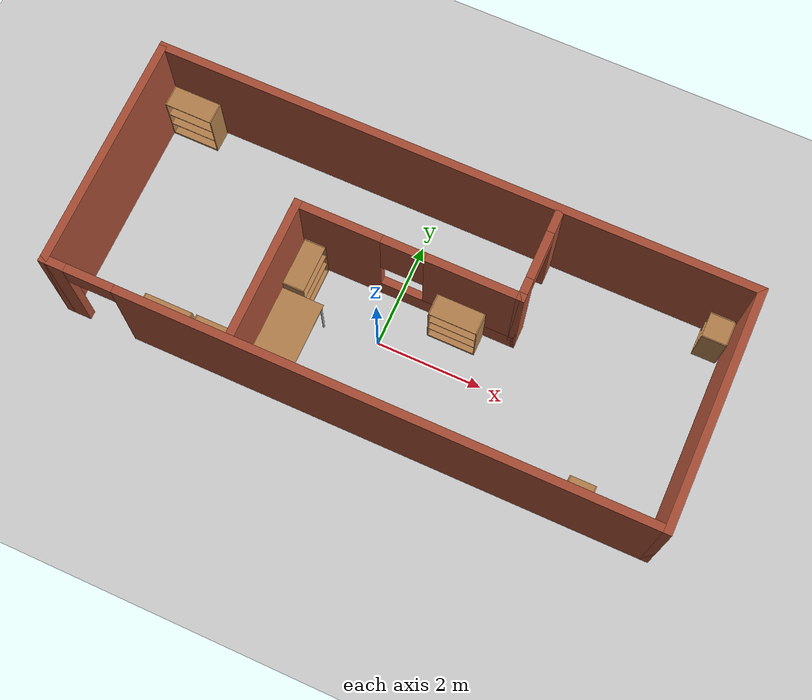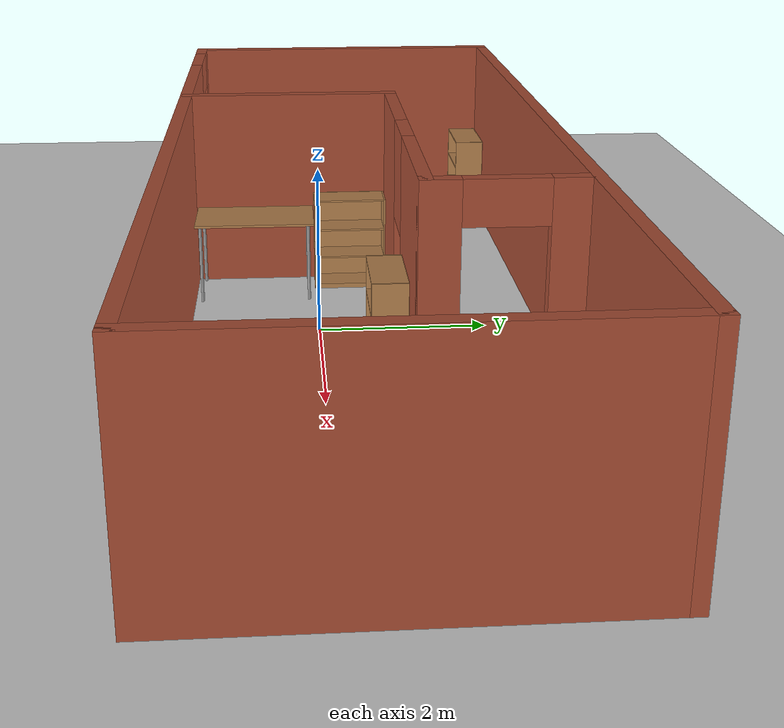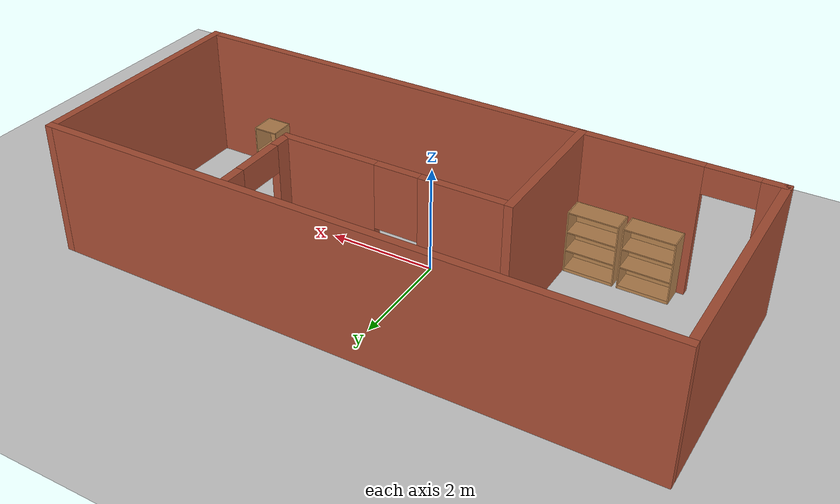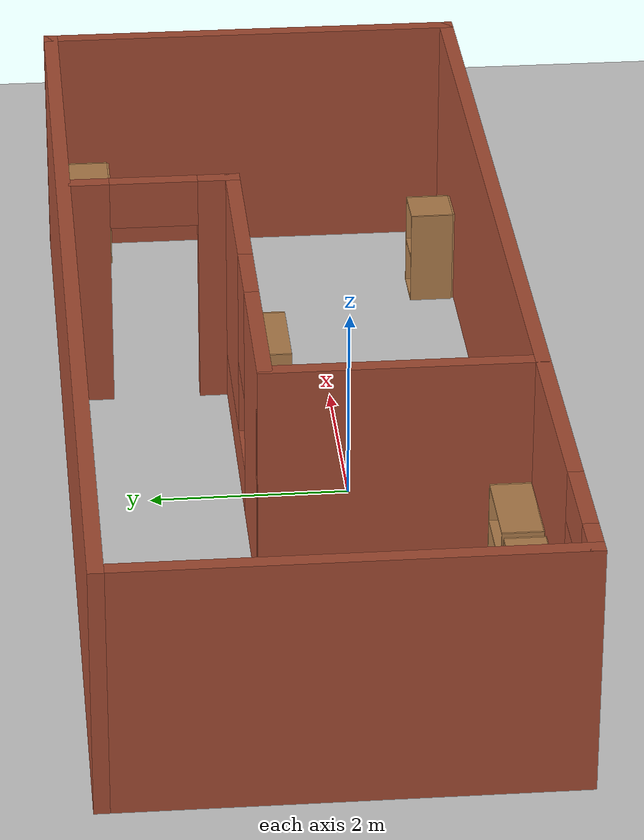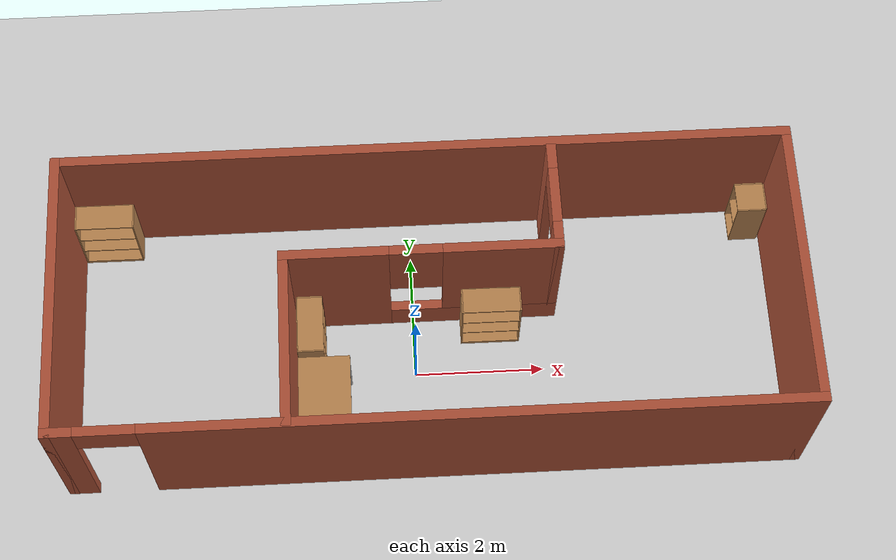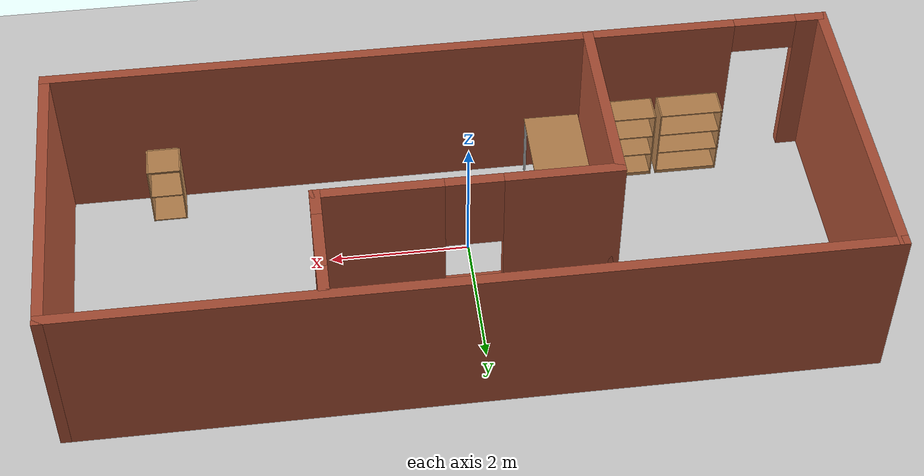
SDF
<sdf version="1.7">
 <world name="default">
  <light name="sun" type="directional">
   <pose>0 0 10 0 -0 0</pose>
   <diffuse>0.8 0.8 0.8 1</diffuse>
   <specular>0.2 0.2 0.2 1</specular>
   <attenuation>
    <range>1000</range>
    <constant>0.9</constant>
    <linear>0.01</linear>
    <quadratic>0.001</quadratic>
   </attenuation>
   <direction>-0.5 0.1 -0.9</direction>
   <spot><inner_angle>0</inner_angle><outer_angle>0</outer_angle><falloff>0</falloff></spot>
  </light>
  <model name="ground_plane">
   <static>1</static>
   <link name="link">
    <collision name="collision">
     <geometry><plane><normal>0 0 1</normal><size>100 100</size></plane></geometry>
     <surface><friction><ode><mu>100</mu><mu2>50</mu2></ode></friction></surface>
    </collision>
    <visual name="visual">
     <cast_shadows>0</cast_shadows>
     <geometry><plane><normal>0 0 1</normal><size>100 100</size></plane></geometry>
     <material>
      <script><uri>file://media/materials/scripts/gazebo.material</uri><name>Gazebo/Grey</name></script>
     </material>
    </visual>
   </link>
  </model>
  <gravity>0 0 -9.8</gravity>
  <magnetic_field>6e-06 2.3e-05 -4.2e-05</magnetic_field>
  <atmosphere type="adiabatic"/>
  <physics type="ode">
   <max_step_size>0.001</max_step_size>
   <real_time_factor>1</real_time_factor>
   <real_time_update_rate>1000</real_time_update_rate>
  </physics>
  <scene><ambient>0.4 0.4 0.4 1</ambient><background>0.7 0.7 0.7 1</background><shadows>1</shadows></scene>
  <audio><device>default</device></audio>
  <spherical_coordinates>
   <surface_model>EARTH_WGS84</surface_model>
   <latitude_deg>0</latitude_deg>
   <longitude_deg>0</longitude_deg>
   <elevation>0</elevation>
   <heading_deg>0</heading_deg>
  </spherical_coordinates>
  <model name="libraryV2">
   <pose>0.22377 0.78673 0 0 -0 0</pose>
   <link name="Wall_11">
    <collision name="Wall_11_Collision">
     <geometry><box><size>4.5 0.15 2.5</size></box></geometry>
     <pose>0 0 1.25 0 -0 0</pose>
    </collision>
    <visual name="Wall_11_Visual">
     <pose>0 0 1.25 0 -0 0</pose>
     <geometry><box><size>4.5 0.15 2.5</size></box></geometry>
     <material>
      <script><uri>file://media/materials/scripts/gazebo.material</uri><name>Gazebo/Bricks</name></script>
      <ambient>1 1 1 1</ambient>
     </material>
     <meta><layer>0</layer></meta>
    </visual>
    <pose>5.55 -0.2375 0 0 -0 1.5708</pose>
   </link>
   <link name="Wall_13">
    <collision name="Wall_13_Collision">
     <geometry><box><size>2.75 0.15 2.5</size></box></geometry>
     <pose>0 0 1.25 0 -0 0</pose>
    </collision>
    <visual name="Wall_13_Visual">
     <pose>0 0 1.25 0 -0 0</pose>
     <geometry><box><size>2.75 0.15 2.5</size></box></geometry>
     <material>
      <script><uri>file://media/materials/scripts/gazebo.material</uri><name>Gazebo/Bricks</name></script>
      <ambient>1 1 1 1</ambient>
     </material>
     <meta><layer>0</layer></meta>
    </visual>
    <pose>-2.14 -1.0925 0 0 -0 1.5708</pose>
   </link>
   <link name="Wall_14">
    <pose>-0.09 0.2075 0 0 -0 0</pose>
    <visual name="Wall_14_Visual_0">
     <pose>-1.3025 0 1.25 0 -0 0</pose>
     <geometry><box><size>1.645 0.15 2.5</size></box></geometry>
     <material>
      <script><uri>file://media/materials/scripts/gazebo.material</uri><name>Gazebo/Bricks</name></script>
      <ambient>1 1 1 1</ambient>
     </material>
     <meta><layer>0</layer></meta>
    </visual>
    <collision name="Wall_14_Collision_0">
     <geometry><box><size>1.645 0.15 2.5</size></box></geometry>
     <pose>-1.3025 0 1.25 0 -0 0</pose>
    </collision>
    <visual name="Wall_14_Visual_1">
     <pose>0.8225 0 0.25 0 -0 0</pose>
     <geometry><box><size>2.605 0.15 0.5</size></box></geometry>
     <material>
      <script><uri>file://media/materials/scripts/gazebo.material</uri><name>Gazebo/Bricks</name></script>
      <ambient>1 1 1 1</ambient>
     </material>
     <meta><layer>0</layer></meta>
    </visual>
    <collision name="Wall_14_Collision_1">
     <geometry><box><size>2.605 0.15 0.5</size></box></geometry>
     <pose>0.8225 0 0.25 0 -0 0</pose>
    </collision>
    <visual name="Wall_14_Visual_2">
     <pose>1.2225 0 1.5 0 -0 0</pose>
     <geometry><box><size>1.805 0.15 2</size></box></geometry>
     <material>
      <script><uri>file://media/materials/scripts/gazebo.material</uri><name>Gazebo/Bricks</name></script>
      <ambient>1 1 1 1</ambient>
     </material>
     <meta><layer>0</layer></meta>
    </visual>
    <collision name="Wall_14_Collision_2">
     <geometry><box><size>1.805 0.15 2</size></box></geometry>
     <pose>1.2225 0 1.5 0 -0 0</pose>
    </collision>
    <visual name="Wall_14_Visual_3">
     <pose>-0.08 0 1.9 0 -0 0</pose>
     <geometry><box><size>0.8 0.15 1.2</size></box></geometry>
     <material>
      <script><uri>file://media/materials/scripts/gazebo.material</uri><name>Gazebo/Bricks</name></script>
      <ambient>1 1 1 1</ambient>
     </material>
     <meta><layer>0</layer></meta>
    </visual>
    <collision name="Wall_14_Collision_3">
     <geometry><box><size>0.8 0.15 1.2</size></box></geometry>
     <pose>-0.08 0 1.9 0 -0 0</pose>
    </collision>
   </link>
   <link name="Wall_15">
    <pose>1.96 1.0075 0 0 -0 1.5708</pose>
    <visual name="Wall_15_Visual_0">
     <pose>-0.6575 0 1.25 0 -0 0</pose>
     <geometry><box><size>0.435 0.15 2.5</size></box></geometry>
     <material>
      <script><uri>file://media/materials/scripts/gazebo.material</uri><name>Gazebo/Bricks</name></script>
      <ambient>1 1 1 1</ambient>
     </material>
     <meta><layer>0</layer></meta>
    </visual>
    <collision name="Wall_15_Collision_0">
     <geometry><box><size>0.435 0.15 2.5</size></box></geometry>
     <pose>-0.6575 0 1.25 0 -0 0</pose>
    </collision>
    <visual name="Wall_15_Visual_1">
     <pose>0.6675 0 1.25 0 -0 0</pose>
     <geometry><box><size>0.415 0.15 2.5</size></box></geometry>
     <material>
      <script><uri>file://media/materials/scripts/gazebo.material</uri><name>Gazebo/Bricks</name></script>
      <ambient>1 1 1 1</ambient>
     </material>
     <meta><layer>0</layer></meta>
    </visual>
    <collision name="Wall_15_Collision_1">
     <geometry><box><size>0.415 0.15 2.5</size></box></geometry>
     <pose>0.6675 0 1.25 0 -0 0</pose>
    </collision>
    <visual name="Wall_15_Visual_2">
     <pose>0.01 0 2.25 0 -0 0</pose>
     <geometry><box><size>0.9 0.15 0.5</size></box></geometry>
     <material>
      <script><uri>file://media/materials/scripts/gazebo.material</uri><name>Gazebo/Bricks</name></script>
      <ambient>1 1 1 1</ambient>
     </material>
     <meta><layer>0</layer></meta>
    </visual>
    <collision name="Wall_15_Collision_2">
     <geometry><box><size>0.9 0.15 0.5</size></box></geometry>
     <pose>0.01 0 2.25 0 -0 0</pose>
    </collision>
   </link>
   <link name="Wall_7">
    <collision name="Wall_7_Collision">
     <geometry><box><size>11.25 0.15 2.5</size></box></geometry>
     <pose>0 0 1.25 0 -0 0</pose>
    </collision>
    <visual name="Wall_7_Visual">
     <pose>0 0 1.25 0 -0 0</pose>
     <geometry><box><size>11.25 0.15 2.5</size></box></geometry>
     <material>
      <script><uri>file://media/materials/scripts/gazebo.material</uri><name>Gazebo/Bricks</name></script>
      <ambient>1 1 1 1</ambient>
     </material>
     <meta><layer>0</layer></meta>
    </visual>
    <pose>-0 1.9375 0 0 -0 3.14159</pose>
   </link>
   <link name="Wall_8">
    <collision name="Wall_8_Collision">
     <geometry><box><size>4.5 0.15 2.5</size></box></geometry>
     <pose>0 0 1.25 0 -0 0</pose>
    </collision>
    <visual name="Wall_8_Visual">
     <pose>0 0 1.25 0 -0 0</pose>
     <geometry><box><size>4.5 0.15 2.5</size></box></geometry>
     <material>
      <script><uri>file://media/materials/scripts/gazebo.material</uri><name>Gazebo/Bricks</name></script>
      <ambient>1 1 1 1</ambient>
     </material>
     <meta><layer>0</layer></meta>
    </visual>
    <pose>-5.55 -0.2375 0 0 -0 -1.5708</pose>
   </link>
   <link name="Wall_9">
    <pose>-0 -2.4125 0 0 -0 0</pose>
    <visual name="Wall_9_Visual_0">
     <pose>-5.3925 0 1.25 0 -0 0</pose>
     <geometry><box><size>0.465 0.15 2.5</size></box></geometry>
     <material>
      <script><uri>file://media/materials/scripts/gazebo.material</uri><name>Gazebo/Bricks</name></script>
      <ambient>1 1 1 1</ambient>
     </material>
     <meta><layer>0</layer></meta>
    </visual>
    <collision name="Wall_9_Collision_0">
     <geometry><box><size>0.465 0.15 2.5</size></box></geometry>
     <pose>-5.3925 0 1.25 0 -0 0</pose>
    </collision>
    <visual name="Wall_9_Visual_1">
     <pose>0.6825 0 1.25 0 -0 0</pose>
     <geometry><box><size>9.885 0.15 2.5</size></box></geometry>
     <material>
      <script><uri>file://media/materials/scripts/gazebo.material</uri><name>Gazebo/Bricks</name></script>
      <ambient>1 1 1 1</ambient>
     </material>
     <meta><layer>0</layer></meta>
    </visual>
    <collision name="Wall_9_Collision_1">
     <geometry><box><size>9.885 0.15 2.5</size></box></geometry>
     <pose>0.6825 0 1.25 0 -0 0</pose>
    </collision>
    <visual name="Wall_9_Visual_2">
     <pose>-4.71 0 2.25 0 -0 0</pose>
     <geometry><box><size>0.9 0.15 0.5</size></box></geometry>
     <material>
      <script><uri>file://media/materials/scripts/gazebo.material</uri><name>Gazebo/Bricks</name></script>
      <ambient>1 1 1 1</ambient>
     </material>
     <meta><layer>0</layer></meta>
    </visual>
    <collision name="Wall_9_Collision_2">
     <geometry><box><size>0.9 0.15 0.5</size></box></geometry>
     <pose>-4.71 0 2.25 0 -0 0</pose>
    </collision>
   </link>
   <static>1</static>
  </model>
  <model name="bookshelf">
   <static>1</static>
   <link name="link">
    <inertial><mass>1</mass></inertial>
    <collision name="back">
     <pose>0 0.005 0.6 0 -0 0</pose>
     <geometry><box><size>0.9 0.01 1.2</size></box></geometry>
    </collision>
    <visual name="visual1">
     <pose>0 0.005 0.6 0 -0 0</pose>
     <geometry><box><size>0.9 0.01 1.2</size></box></geometry>
     <material>
      <script><uri>file://media/materials/scripts/gazebo.material</uri><name>Gazebo/Wood</name></script>
     </material>
    </visual>
    <collision name="left_side">
     <pose>0.45 -0.195 0.6 0 -0 0</pose>
     <geometry><box><size>0.02 0.4 1.2</size></box></geometry>
    </collision>
    <visual name="visual2">
     <pose>0.45 -0.195 0.6 0 -0 0</pose>
     <geometry><box><size>0.02 0.4 1.2</size></box></geometry>
     <material>
      <script><uri>file://media/materials/scripts/gazebo.material</uri><name>Gazebo/Wood</name></script>
     </material>
    </visual>
    <collision name="right_side">
     <pose>-0.45 -0.195 0.6 0 -0 0</pose>
     <geometry><box><size>0.02 0.4 1.2</size></box></geometry>
    </collision>
    <visual name="visual3">
     <pose>-0.45 -0.195 0.6 0 -0 0</pose>
     <geometry><box><size>0.02 0.4 1.2</size></box></geometry>
     <material>
      <script><uri>file://media/materials/scripts/gazebo.material</uri><name>Gazebo/Wood</name></script>
     </material>
    </visual>
    <collision name="bottom">
     <pose>0 -0.195 0.03 0 -0 0</pose>
     <geometry><box><size>0.88 0.4 0.06</size></box></geometry>
    </collision>
    <visual name="visual4">
     <pose>0 -0.195 0.03 0 -0 0</pose>
     <geometry><box><size>0.88 0.4 0.06</size></box></geometry>
     <material>
      <script><uri>file://media/materials/scripts/gazebo.material</uri><name>Gazebo/Wood</name></script>
     </material>
    </visual>
    <collision name="top">
     <pose>0 -0.195 1.19 0 -0 0</pose>
     <geometry><box><size>0.88 0.4 0.02</size></box></geometry>
    </collision>
    <visual name="visual5">
     <pose>0 -0.195 1.19 0 -0 0</pose>
     <geometry><box><size>0.88 0.4 0.02</size></box></geometry>
     <material>
      <script><uri>file://media/materials/scripts/gazebo.material</uri><name>Gazebo/Wood</name></script>
     </material>
    </visual>
    <collision name="low_shelf">
     <pose>0 -0.195 0.43 0 -0 0</pose>
     <geometry><box><size>0.88 0.4 0.02</size></box></geometry>
    </collision>
    <visual name="visual6">
     <pose>0 -0.195 0.43 0 -0 0</pose>
     <geometry><box><size>0.88 0.4 0.02</size></box></geometry>
     <material>
      <script><uri>file://media/materials/scripts/gazebo.material</uri><name>Gazebo/Wood</name></script>
     </material>
    </visual>
    <collision name="high_shelf">
     <pose>0 -0.195 0.8 0 -0 0</pose>
     <geometry><box><size>0.88 0.4 0.02</size></box></geometry>
    </collision>
    <visual name="visual7">
     <pose>0 -0.195 0.8 0 -0 0</pose>
     <geometry><box><size>0.88 0.4 0.02</size></box></geometry>
     <material>
      <script><uri>file://media/materials/scripts/gazebo.material</uri><name>Gazebo/Wood</name></script>
     </material>
    </visual>
   </link>
   <pose>-2.45333 -1.538 0 0 -0 3.14098</pose>
  </model>
  <model name="bookshelf_clone">
   <static>1</static>
   <link name="link">
    <inertial><mass>1</mass></inertial>
    <collision name="back">
     <pose>0 0.005 0.6 0 -0 0</pose>
     <geometry><box><size>0.9 0.01 1.2</size></box></geometry>
    </collision>
    <visual name="visual1">
     <pose>0 0.005 0.6 0 -0 0</pose>
     <geometry><box><size>0.9 0.01 1.2</size></box></geometry>
     <material>
      <script><uri>file://media/materials/scripts/gazebo.material</uri><name>Gazebo/Wood</name></script>
     </material>
    </visual>
    <collision name="left_side">
     <pose>0.45 -0.195 0.6 0 -0 0</pose>
     <geometry><box><size>0.02 0.4 1.2</size></box></geometry>
    </collision>
    <visual name="visual2">
     <pose>0.45 -0.195 0.6 0 -0 0</pose>
     <geometry><box><size>0.02 0.4 1.2</size></box></geometry>
     <material>
      <script><uri>file://media/materials/scripts/gazebo.material</uri><name>Gazebo/Wood</name></script>
     </material>
    </visual>
    <collision name="right_side">
     <pose>-0.45 -0.195 0.6 0 -0 0</pose>
     <geometry><box><size>0.02 0.4 1.2</size></box></geometry>
    </collision>
    <visual name="visual3">
     <pose>-0.45 -0.195 0.6 0 -0 0</pose>
     <geometry><box><size>0.02 0.4 1.2</size></box></geometry>
     <material>
      <script><uri>file://media/materials/scripts/gazebo.material</uri><name>Gazebo/Wood</name></script>
     </material>
    </visual>
    <collision name="bottom">
     <pose>0 -0.195 0.03 0 -0 0</pose>
     <geometry><box><size>0.88 0.4 0.06</size></box></geometry>
    </collision>
    <visual name="visual4">
     <pose>0 -0.195 0.03 0 -0 0</pose>
     <geometry><box><size>0.88 0.4 0.06</size></box></geometry>
     <material>
      <script><uri>file://media/materials/scripts/gazebo.material</uri><name>Gazebo/Wood</name></script>
     </material>
    </visual>
    <collision name="top">
     <pose>0 -0.195 1.19 0 -0 0</pose>
     <geometry><box><size>0.88 0.4 0.02</size></box></geometry>
    </collision>
    <visual name="visual5">
     <pose>0 -0.195 1.19 0 -0 0</pose>
     <geometry><box><size>0.88 0.4 0.02</size></box></geometry>
     <material>
      <script><uri>file://media/materials/scripts/gazebo.material</uri><name>Gazebo/Wood</name></script>
     </material>
    </visual>
    <collision name="low_shelf">
     <pose>0 -0.195 0.43 0 -0 0</pose>
     <geometry><box><size>0.88 0.4 0.02</size></box></geometry>
    </collision>
    <visual name="visual6">
     <pose>0 -0.195 0.43 0 -0 0</pose>
     <geometry><box><size>0.88 0.4 0.02</size></box></geometry>
     <material>
      <script><uri>file://media/materials/scripts/gazebo.material</uri><name>Gazebo/Wood</name></script>
     </material>
    </visual>
    <collision name="high_shelf">
     <pose>0 -0.195 0.8 0 -0 0</pose>
     <geometry><box><size>0.88 0.4 0.02</size></box></geometry>
    </collision>
    <visual name="visual7">
     <pose>0 -0.195 0.8 0 -0 0</pose>
     <geometry><box><size>0.88 0.4 0.02</size></box></geometry>
     <material>
      <script><uri>file://media/materials/scripts/gazebo.material</uri><name>Gazebo/Wood</name></script>
     </material>
    </visual>
   </link>
   <pose>-3.44298 -1.54255 0 0 -0 3.14098</pose>
  </model>
  <model name="bookshelf_clone_clone">
   <static>1</static>
   <link name="link">
    <inertial><mass>1</mass></inertial>
    <collision name="back">
     <pose>0 0.005 0.6 0 -0 0</pose>
     <geometry><box><size>0.9 0.01 1.2</size></box></geometry>
    </collision>
    <visual name="visual1">
     <pose>0 0.005 0.6 0 -0 0</pose>
     <geometry><box><size>0.9 0.01 1.2</size></box></geometry>
     <material>
      <script><uri>file://media/materials/scripts/gazebo.material</uri><name>Gazebo/Wood</name></script>
     </material>
    </visual>
    <collision name="left_side">
     <pose>0.45 -0.195 0.6 0 -0 0</pose>
     <geometry><box><size>0.02 0.4 1.2</size></box></geometry>
    </collision>
    <visual name="visual2">
     <pose>0.45 -0.195 0.6 0 -0 0</pose>
     <geometry><box><size>0.02 0.4 1.2</size></box></geometry>
     <material>
      <script><uri>file://media/materials/scripts/gazebo.material</uri><name>Gazebo/Wood</name></script>
     </material>
    </visual>
    <collision name="right_side">
     <pose>-0.45 -0.195 0.6 0 -0 0</pose>
     <geometry><box><size>0.02 0.4 1.2</size></box></geometry>
    </collision>
    <visual name="visual3">
     <pose>-0.45 -0.195 0.6 0 -0 0</pose>
     <geometry><box><size>0.02 0.4 1.2</size></box></geometry>
     <material>
      <script><uri>file://media/materials/scripts/gazebo.material</uri><name>Gazebo/Wood</name></script>
     </material>
    </visual>
    <collision name="bottom">
     <pose>0 -0.195 0.03 0 -0 0</pose>
     <geometry><box><size>0.88 0.4 0.06</size></box></geometry>
    </collision>
    <visual name="visual4">
     <pose>0 -0.195 0.03 0 -0 0</pose>
     <geometry><box><size>0.88 0.4 0.06</size></box></geometry>
     <material>
      <script><uri>file://media/materials/scripts/gazebo.material</uri><name>Gazebo/Wood</name></script>
     </material>
    </visual>
    <collision name="top">
     <pose>0 -0.195 1.19 0 -0 0</pose>
     <geometry><box><size>0.88 0.4 0.02</size></box></geometry>
    </collision>
    <visual name="visual5">
     <pose>0 -0.195 1.19 0 -0 0</pose>
     <geometry><box><size>0.88 0.4 0.02</size></box></geometry>
     <material>
      <script><uri>file://media/materials/scripts/gazebo.material</uri><name>Gazebo/Wood</name></script>
     </material>
    </visual>
    <collision name="low_shelf">
     <pose>0 -0.195 0.43 0 -0 0</pose>
     <geometry><box><size>0.88 0.4 0.02</size></box></geometry>
    </collision>
    <visual name="visual6">
     <pose>0 -0.195 0.43 0 -0 0</pose>
     <geometry><box><size>0.88 0.4 0.02</size></box></geometry>
     <material>
      <script><uri>file://media/materials/scripts/gazebo.material</uri><name>Gazebo/Wood</name></script>
     </material>
    </visual>
    <collision name="high_shelf">
     <pose>0 -0.195 0.8 0 -0 0</pose>
     <geometry><box><size>0.88 0.4 0.02</size></box></geometry>
    </collision>
    <visual name="visual7">
     <pose>0 -0.195 0.8 0 -0 0</pose>
     <geometry><box><size>0.88 0.4 0.02</size></box></geometry>
     <material>
      <script><uri>file://media/materials/scripts/gazebo.material</uri><name>Gazebo/Wood</name></script>
     </material>
    </visual>
   </link>
   <pose>-4.78564 2.62937 0 0 0 -0.003294</pose>
  </model>
  <model name="table">
   <static>1</static>
   <link name="link">
    <collision name="surface">
     <pose>0 0 1 0 -0 0</pose>
     <geometry><box><size>1.5 0.8 0.03</size></box></geometry>
     <surface><friction><ode><mu>0.6</mu><mu2>0.6</mu2></ode></friction></surface>
    </collision>
    <visual name="visual1">
     <pose>0 0 1 0 -0 0</pose>
     <geometry><box><size>1.5 0.8 0.03</size></box></geometry>
     <material>
      <script><uri>file://media/materials/scripts/gazebo.material</uri><name>Gazebo/Wood</name></script>
     </material>
    </visual>
    <collision name="front_left_leg">
     <pose>0.68 0.38 0.5 0 -0 0</pose>
     <geometry><cylinder><radius>0.02</radius><length>1</length></cylinder></geometry>
    </collision>
    <visual name="front_left_leg">
     <pose>0.68 0.38 0.5 0 -0 0</pose>
     <geometry><cylinder><radius>0.02</radius><length>1</length></cylinder></geometry>
     <material>
      <script><uri>file://media/materials/scripts/gazebo.material</uri><name>Gazebo/Grey</name></script>
     </material>
    </visual>
    <collision name="front_right_leg">
     <pose>0.68 -0.38 0.5 0 -0 0</pose>
     <geometry><cylinder><radius>0.02</radius><length>1</length></cylinder></geometry>
    </collision>
    <visual name="front_right_leg">
     <pose>0.68 -0.38 0.5 0 -0 0</pose>
     <geometry><cylinder><radius>0.02</radius><length>1</length></cylinder></geometry>
     <material>
      <script><uri>file://media/materials/scripts/gazebo.material</uri><name>Gazebo/Grey</name></script>
     </material>
    </visual>
    <collision name="back_right_leg">
     <pose>-0.68 -0.38 0.5 0 -0 0</pose>
     <geometry><cylinder><radius>0.02</radius><length>1</length></cylinder></geometry>
    </collision>
    <visual name="back_right_leg">
     <pose>-0.68 -0.38 0.5 0 -0 0</pose>
     <geometry><cylinder><radius>0.02</radius><length>1</length></cylinder></geometry>
     <material>
      <script><uri>file://media/materials/scripts/gazebo.material</uri><name>Gazebo/Grey</name></script>
     </material>
    </visual>
    <collision name="back_left_leg">
     <pose>-0.68 0.38 0.5 0 -0 0</pose>
     <geometry><cylinder><radius>0.02</radius><length>1</length></cylinder></geometry>
    </collision>
    <visual name="back_left_leg">
     <pose>-0.68 0.38 0.5 0 -0 0</pose>
     <geometry><cylinder><radius>0.02</radius><length>1</length></cylinder></geometry>
     <material>
      <script><uri>file://media/materials/scripts/gazebo.material</uri><name>Gazebo/Grey</name></script>
     </material>
    </visual>
   </link>
   <pose>-1.41367 -0.781275 0 0 0 -1.57486</pose>
  </model>
  <model name="cabinet">
   <static>1</static>
   <link name="cabinet_bottom_plate">
    <inertial>
     <pose>0 0 -1 0 -0 0</pose>
     <inertia><ixx>2.05</ixx><ixy>0</ixy><ixz>0</ixz><iyy>2.05</iyy><iyz>0</iyz><izz>2.05</izz></inertia>
     <mass>25</mass>
    </inertial>
    <collision name="cabinet_bottom_plate_geom">
     <pose>0 0 0.01 0 -0 0</pose>
     <geometry><box><size>0.45 0.45 0.02</size></box></geometry>
    </collision>
    <visual name="cabinet_bottom_plate_geom_visual">
     <pose>0 0 0.01 0 -0 0</pose>
     <geometry><box><size>0.45 0.45 0.02</size></box></geometry>
     <material>
      <script><uri>file://media/materials/scripts/gazebo.material</uri><name>Gazebo/Wood</name></script>
     </material>
    </visual>
    <collision name="cabinet_bottom_plate_geom_cabinet_back_plate">
     <pose>0.235 0 0.51 0 -0 0</pose>
     <geometry><box><size>0.02 0.45 1.02</size></box></geometry>
    </collision>
    <visual name="cabinet_bottom_plate_geom_cabinet_back_plate_visual">
     <pose>0.235 0 0.51 0 -0 0</pose>
     <geometry><box><size>0.02 0.45 1.02</size></box></geometry>
     <material>
      <script><uri>file://media/materials/scripts/gazebo.material</uri><name>Gazebo/Wood</name></script>
     </material>
    </visual>
    <collision name="cabinet_bottom_plate_geom_cabinet_left_plate">
     <pose>0 0.235 0.51 0 -0 0</pose>
     <geometry><box><size>0.45 0.02 1.02</size></box></geometry>
    </collision>
    <visual name="cabinet_bottom_plate_geom_cabinet_left_plate_visual">
     <pose>0 0.235 0.51 0 -0 0</pose>
     <geometry><box><size>0.45 0.02 1.02</size></box></geometry>
     <material>
      <script><uri>file://media/materials/scripts/gazebo.material</uri><name>Gazebo/Wood</name></script>
     </material>
    </visual>
    <collision name="cabinet_bottom_plate_geom_cabinet_middle_plate">
     <pose>0 0 0.51 0 -0 0</pose>
     <geometry><box><size>0.45 0.45 0.02</size></box></geometry>
    </collision>
    <visual name="cabinet_bottom_plate_geom_cabinet_middle_plate_visual">
     <pose>0 0 0.51 0 -0 0</pose>
     <geometry><box><size>0.45 0.45 0.02</size></box></geometry>
     <material>
      <script><uri>file://media/materials/scripts/gazebo.material</uri><name>Gazebo/Wood</name></script>
     </material>
    </visual>
    <collision name="cabinet_bottom_plate_geom_cabinet_right_plate">
     <pose>0 -0.235 0.51 0 -0 0</pose>
     <geometry><box><size>0.45 0.02 1.02</size></box></geometry>
    </collision>
    <visual name="cabinet_bottom_plate_geom_cabinet_right_plate_visual">
     <pose>0 -0.235 0.51 0 -0 0</pose>
     <geometry><box><size>0.45 0.02 1.02</size></box></geometry>
     <material>
      <script><uri>file://media/materials/scripts/gazebo.material</uri><name>Gazebo/Wood</name></script>
     </material>
    </visual>
    <collision name="cabinet_bottom_plate_geom_cabinet_top_plate">
     <pose>0 0 1.01 0 -0 0</pose>
     <geometry><box><size>0.45 0.45 0.02</size></box></geometry>
    </collision>
    <visual name="cabinet_bottom_plate_geom_cabinet_top_plate_visual">
     <pose>0 0 1.01 0 -0 0</pose>
     <geometry><box><size>0.45 0.45 0.02</size></box></geometry>
     <material>
      <script><uri>file://media/materials/scripts/gazebo.material</uri><name>Gazebo/Wood</name></script>
     </material>
    </visual>
   </link>
   <pose>5.43291 2.37446 0 0 -0 0</pose>
  </model>
  <model name="cabinet_clone">
   <static>1</static>
   <link name="cabinet_bottom_plate">
    <inertial>
     <pose>0 0 -1 0 -0 0</pose>
     <inertia><ixx>2.05</ixx><ixy>0</ixy><ixz>0</ixz><iyy>2.05</iyy><iyz>0</iyz><izz>2.05</izz></inertia>
     <mass>25</mass>
    </inertial>
    <collision name="cabinet_bottom_plate_geom">
     <pose>0 0 0.01 0 -0 0</pose>
     <geometry><box><size>0.45 0.45 0.02</size></box></geometry>
    </collision>
    <visual name="cabinet_bottom_plate_geom_visual">
     <pose>0 0 0.01 0 -0 0</pose>
     <geometry><box><size>0.45 0.45 0.02</size></box></geometry>
     <material>
      <script><uri>file://media/materials/scripts/gazebo.material</uri><name>Gazebo/Wood</name></script>
     </material>
    </visual>
    <collision name="cabinet_bottom_plate_geom_cabinet_back_plate">
     <pose>0.235 0 0.51 0 -0 0</pose>
     <geometry><box><size>0.02 0.45 1.02</size></box></geometry>
    </collision>
    <visual name="cabinet_bottom_plate_geom_cabinet_back_plate_visual">
     <pose>0.235 0 0.51 0 -0 0</pose>
     <geometry><box><size>0.02 0.45 1.02</size></box></geometry>
     <material>
      <script><uri>file://media/materials/scripts/gazebo.material</uri><name>Gazebo/Wood</name></script>
     </material>
    </visual>
    <collision name="cabinet_bottom_plate_geom_cabinet_left_plate">
     <pose>0 0.235 0.51 0 -0 0</pose>
     <geometry><box><size>0.45 0.02 1.02</size></box></geometry>
    </collision>
    <visual name="cabinet_bottom_plate_geom_cabinet_left_plate_visual">
     <pose>0 0.235 0.51 0 -0 0</pose>
     <geometry><box><size>0.45 0.02 1.02</size></box></geometry>
     <material>
      <script><uri>file://media/materials/scripts/gazebo.material</uri><name>Gazebo/Wood</name></script>
     </material>
    </visual>
    <collision name="cabinet_bottom_plate_geom_cabinet_middle_plate">
     <pose>0 0 0.51 0 -0 0</pose>
     <geometry><box><size>0.45 0.45 0.02</size></box></geometry>
    </collision>
    <visual name="cabinet_bottom_plate_geom_cabinet_middle_plate_visual">
     <pose>0 0 0.51 0 -0 0</pose>
     <geometry><box><size>0.45 0.45 0.02</size></box></geometry>
     <material>
      <script><uri>file://media/materials/scripts/gazebo.material</uri><name>Gazebo/Wood</name></script>
     </material>
    </visual>
    <collision name="cabinet_bottom_plate_geom_cabinet_right_plate">
     <pose>0 -0.235 0.51 0 -0 0</pose>
     <geometry><box><size>0.45 0.02 1.02</size></box></geometry>
    </collision>
    <visual name="cabinet_bottom_plate_geom_cabinet_right_plate_visual">
     <pose>0 -0.235 0.51 0 -0 0</pose>
     <geometry><box><size>0.45 0.02 1.02</size></box></geometry>
     <material>
      <script><uri>file://media/materials/scripts/gazebo.material</uri><name>Gazebo/Wood</name></script>
     </material>
    </visual>
    <collision name="cabinet_bottom_plate_geom_cabinet_top_plate">
     <pose>0 0 1.01 0 -0 0</pose>
     <geometry><box><size>0.45 0.45 0.02</size></box></geometry>
    </collision>
    <visual name="cabinet_bottom_plate_geom_cabinet_top_plate_visual">
     <pose>0 0 1.01 0 -0 0</pose>
     <geometry><box><size>0.45 0.45 0.02</size></box></geometry>
     <material>
      <script><uri>file://media/materials/scripts/gazebo.material</uri><name>Gazebo/Wood</name></script>
     </material>
    </visual>
   </link>
   <pose>4.2934 -1.29983 0 0 0 -1.56604</pose>
  </model>
  <model name="bookshelf_clone_clone_clone">
   <static>1</static>
   <link name="link">
    <inertial><mass>1</mass></inertial>
    <collision name="back">
     <pose>0 0.005 0.6 0 -0 0</pose>
     <geometry><box><size>0.9 0.01 1.2</size></box></geometry>
    </collision>
    <visual name="visual1">
     <pose>0 0.005 0.6 0 -0 0</pose>
     <geometry><box><size>0.9 0.01 1.2</size></box></geometry>
     <material>
      <script><uri>file://media/materials/scripts/gazebo.material</uri><name>Gazebo/Wood</name></script>
     </material>
    </visual>
    <collision name="left_side">
     <pose>0.45 -0.195 0.6 0 -0 0</pose>
     <geometry><box><size>0.02 0.4 1.2</size></box></geometry>
    </collision>
    <visual name="visual2">
     <pose>0.45 -0.195 0.6 0 -0 0</pose>
     <geometry><box><size>0.02 0.4 1.2</size></box></geometry>
     <material>
      <script><uri>file://media/materials/scripts/gazebo.material</uri><name>Gazebo/Wood</name></script>
     </material>
    </visual>
    <collision name="right_side">
     <pose>-0.45 -0.195 0.6 0 -0 0</pose>
     <geometry><box><size>0.02 0.4 1.2</size></box></geometry>
    </collision>
    <visual name="visual3">
     <pose>-0.45 -0.195 0.6 0 -0 0</pose>
     <geometry><box><size>0.02 0.4 1.2</size></box></geometry>
     <material>
      <script><uri>file://media/materials/scripts/gazebo.material</uri><name>Gazebo/Wood</name></script>
     </material>
    </visual>
    <collision name="bottom">
     <pose>0 -0.195 0.03 0 -0 0</pose>
     <geometry><box><size>0.88 0.4 0.06</size></box></geometry>
    </collision>
    <visual name="visual4">
     <pose>0 -0.195 0.03 0 -0 0</pose>
     <geometry><box><size>0.88 0.4 0.06</size></box></geometry>
     <material>
      <script><uri>file://media/materials/scripts/gazebo.material</uri><name>Gazebo/Wood</name></script>
     </material>
    </visual>
    <collision name="top">
     <pose>0 -0.195 1.19 0 -0 0</pose>
     <geometry><box><size>0.88 0.4 0.02</size></box></geometry>
    </collision>
    <visual name="visual5">
     <pose>0 -0.195 1.19 0 -0 0</pose>
     <geometry><box><size>0.88 0.4 0.02</size></box></geometry>
     <material>
      <script><uri>file://media/materials/scripts/gazebo.material</uri><name>Gazebo/Wood</name></script>
     </material>
    </visual>
    <collision name="low_shelf">
     <pose>0 -0.195 0.43 0 -0 0</pose>
     <geometry><box><size>0.88 0.4 0.02</size></box></geometry>
    </collision>
    <visual name="visual6">
     <pose>0 -0.195 0.43 0 -0 0</pose>
     <geometry><box><size>0.88 0.4 0.02</size></box></geometry>
     <material>
      <script><uri>file://media/materials/scripts/gazebo.material</uri><name>Gazebo/Wood</name></script>
     </material>
    </visual>
    <collision name="high_shelf">
     <pose>0 -0.195 0.8 0 -0 0</pose>
     <geometry><box><size>0.88 0.4 0.02</size></box></geometry>
    </collision>
    <visual name="visual7">
     <pose>0 -0.195 0.8 0 -0 0</pose>
     <geometry><box><size>0.88 0.4 0.02</size></box></geometry>
     <material>
      <script><uri>file://media/materials/scripts/gazebo.material</uri><name>Gazebo/Wood</name></script>
     </material>
    </visual>
   </link>
   <pose>1.19749 0.899236 0 0 0 -0.003294</pose>
  </model>
  <model name="bookshelf_clone_clone_clone_0">
   <static>1</static>
   <link name="link">
    <inertial><mass>1</mass></inertial>
    <collision name="back">
     <pose>0 0.005 0.6 0 -0 0</pose>
     <geometry><box><size>0.9 0.01 1.2</size></box></geometry>
    </collision>
    <visual name="visual1">
     <pose>0 0.005 0.6 0 -0 0</pose>
     <geometry><box><size>0.9 0.01 1.2</size></box></geometry>
     <material>
      <script><uri>file://media/materials/scripts/gazebo.material</uri><name>Gazebo/Wood</name></script>
     </material>
    </visual>
    <collision name="left_side">
     <pose>0.45 -0.195 0.6 0 -0 0</pose>
     <geometry><box><size>0.02 0.4 1.2</size></box></geometry>
    </collision>
    <visual name="visual2">
     <pose>0.45 -0.195 0.6 0 -0 0</pose>
     <geometry><box><size>0.02 0.4 1.2</size></box></geometry>
     <material>
      <script><uri>file://media/materials/scripts/gazebo.material</uri><name>Gazebo/Wood</name></script>
     </material>
    </visual>
    <collision name="right_side">
     <pose>-0.45 -0.195 0.6 0 -0 0</pose>
     <geometry><box><size>0.02 0.4 1.2</size></box></geometry>
    </collision>
    <visual name="visual3">
     <pose>-0.45 -0.195 0.6 0 -0 0</pose>
     <geometry><box><size>0.02 0.4 1.2</size></box></geometry>
     <material>
      <script><uri>file://media/materials/scripts/gazebo.material</uri><name>Gazebo/Wood</name></script>
     </material>
    </visual>
    <collision name="bottom">
     <pose>0 -0.195 0.03 0 -0 0</pose>
     <geometry><box><size>0.88 0.4 0.06</size></box></geometry>
    </collision>
    <visual name="visual4">
     <pose>0 -0.195 0.03 0 -0 0</pose>
     <geometry><box><size>0.88 0.4 0.06</size></box></geometry>
     <material>
      <script><uri>file://media/materials/scripts/gazebo.material</uri><name>Gazebo/Wood</name></script>
     </material>
    </visual>
    <collision name="top">
     <pose>0 -0.195 1.19 0 -0 0</pose>
     <geometry><box><size>0.88 0.4 0.02</size></box></geometry>
    </collision>
    <visual name="visual5">
     <pose>0 -0.195 1.19 0 -0 0</pose>
     <geometry><box><size>0.88 0.4 0.02</size></box></geometry>
     <material>
      <script><uri>file://media/materials/scripts/gazebo.material</uri><name>Gazebo/Wood</name></script>
     </material>
    </visual>
    <collision name="low_shelf">
     <pose>0 -0.195 0.43 0 -0 0</pose>
     <geometry><box><size>0.88 0.4 0.02</size></box></geometry>
    </collision>
    <visual name="visual6">
     <pose>0 -0.195 0.43 0 -0 0</pose>
     <geometry><box><size>0.88 0.4 0.02</size></box></geometry>
     <material>
      <script><uri>file://media/materials/scripts/gazebo.material</uri><name>Gazebo/Wood</name></script>
     </material>
    </visual>
    <collision name="high_shelf">
     <pose>0 -0.195 0.8 0 -0 0</pose>
     <geometry><box><size>0.88 0.4 0.02</size></box></geometry>
    </collision>
    <visual name="visual7">
     <pose>0 -0.195 0.8 0 -0 0</pose>
     <geometry><box><size>0.88 0.4 0.02</size></box></geometry>
     <material>
      <script><uri>file://media/materials/scripts/gazebo.material</uri><name>Gazebo/Wood</name></script>
     </material>
    </visual>
   </link>
   <pose>-1.79743 0.442968 0 0 -0 1.5722</pose>
  </model>
 </world>
</sdf>
